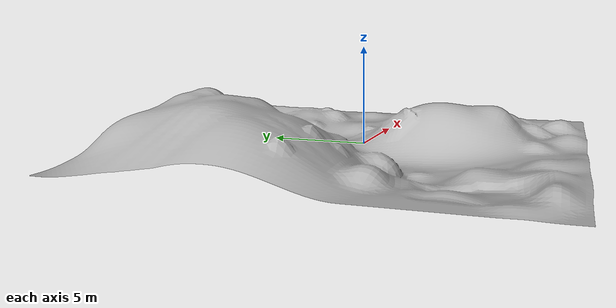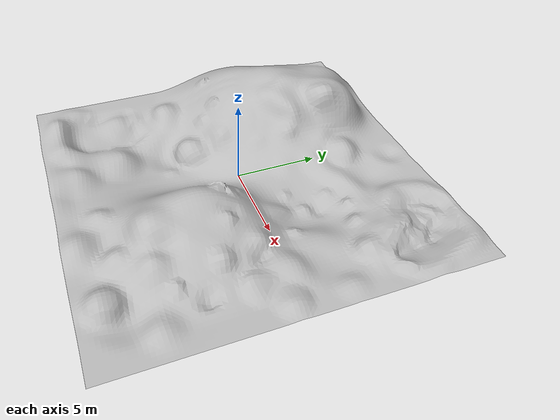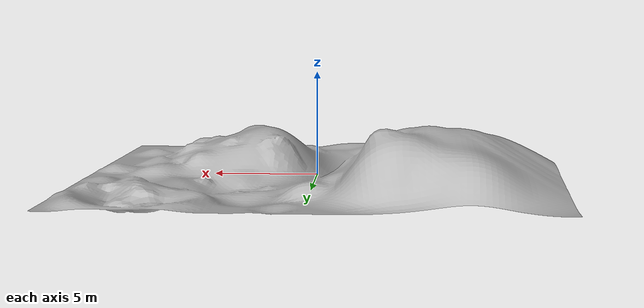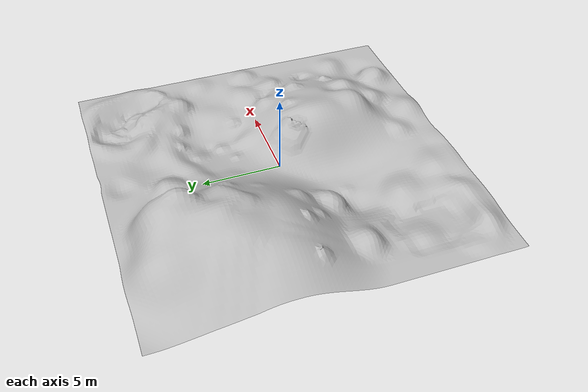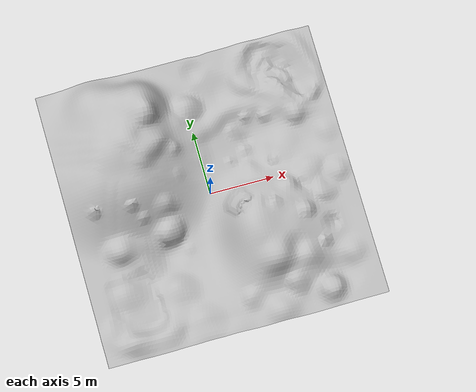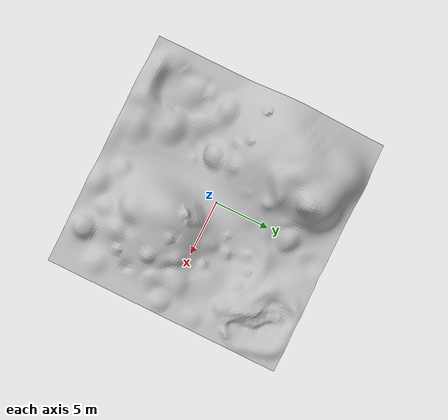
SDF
<?xml version="1.0" ?>
<sdf version="1.5">
  <model name="terrain1">
    <pose>0 0 0 0 0 0</pose>
    <static>true</static>
    <link name="body">
      <visual name="visual">
        <geometry>
          <mesh><uri>model://terrain1/media/terrain1.dae</uri></mesh>
        </geometry>
	<material>
          <script>
            <uri>model://terrain_1/media/scripts</uri>
            <uri>model://terrain_1/media/Textures</uri>
          </script>
        </material>
      </visual>
      <collision name="collision">
        <geometry>
          <mesh><uri>model://terrain1/media/terrain1.dae</uri></mesh>
        </geometry>
      </collision>
    </link>
  </model>
</sdf>
